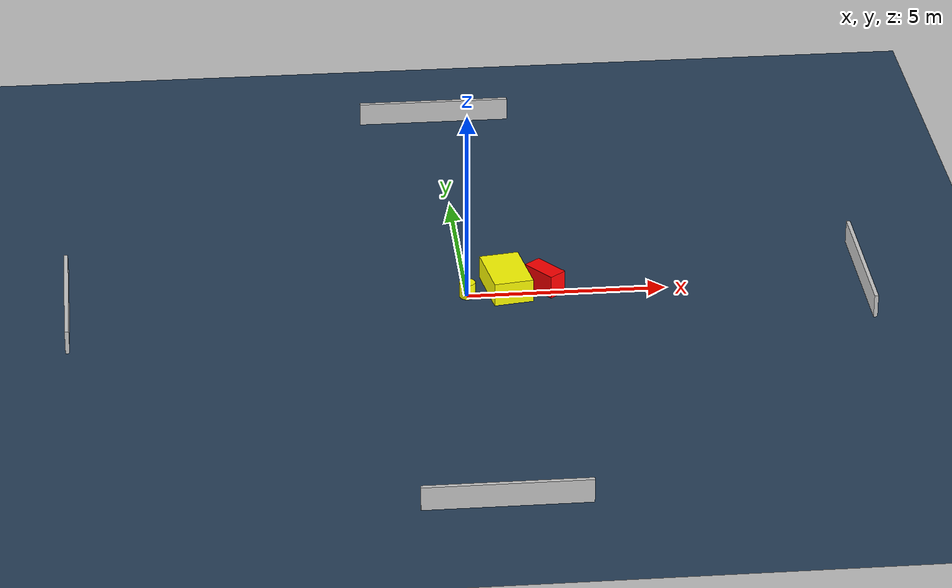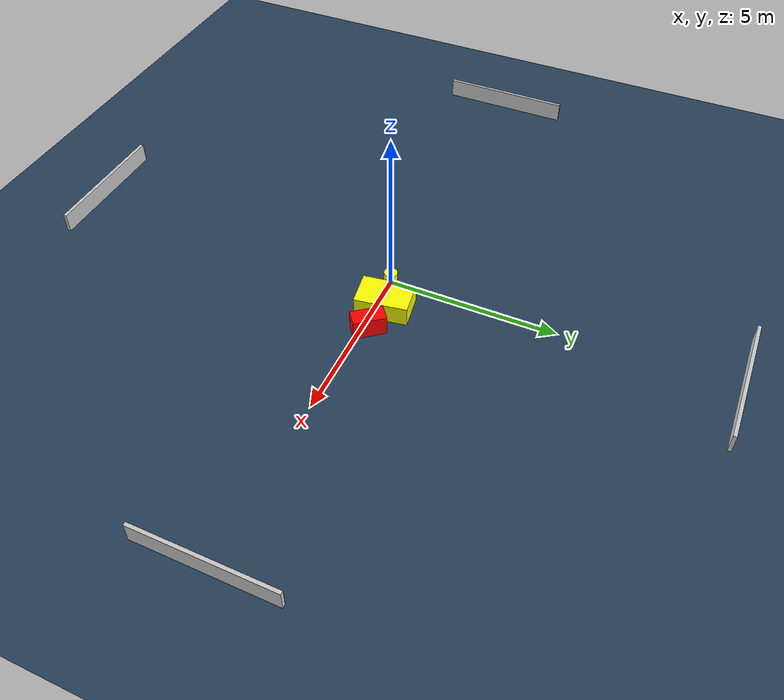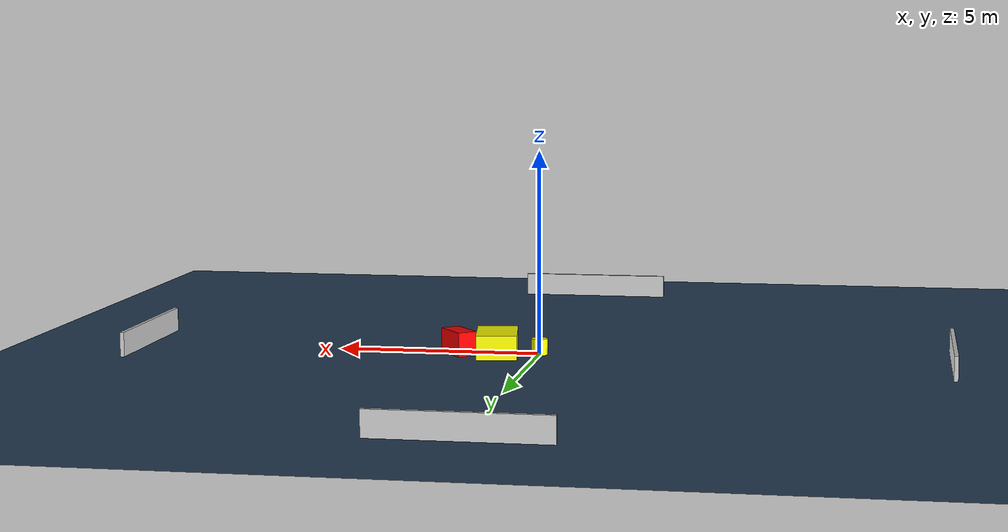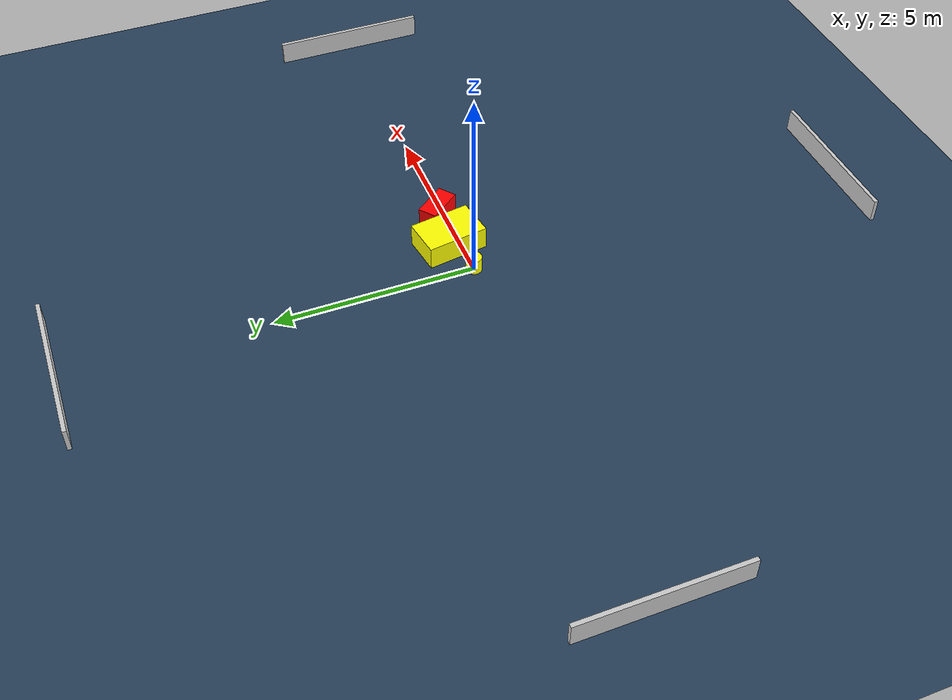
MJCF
<?xml version="1.0" ?>
<mujoco model="generated_environment">
  <option timestep="0.01" integrator="RK4" cone="elliptic"/>
  <default>
    <geom density="1"/>
  </default>
  <asset>
    <texture builtin="gradient" height="3072" name="skybox" rgb1="0.3 0.5 0.7" rgb2="0 0 0" type="skybox" width="512"/>
    <texture builtin="checker" height="300" name="groundplane" rgb1="0.2 0.3 0.4" rgb2="0.1 0.2 0.3" type="2d" width="300"/>
    <material name="groundplane" reflectance="0.2" texrepeat="5 5" texture="groundplane"/>
  </asset>
  <worldbody>
    <light dir="0 0 -1" directional="true" pos="0 0 1.5"/>
    <geom condim="3" friction="0.5 0.005 0.001" material="groundplane" name="floor" pos="0 0 0" size="0 0 0.05" type="plane"/>
    <body name="walls">
      <geom name="wall_1" condim="4" pos="-10.0 0.0 0.3" rgba="0.800000011920929 0.800000011920929 0.800000011920929 1.0" size="0.05 2.0 0.3" type="box"/>
      <geom name="wall_2" condim="4" pos="10.0 0.0 0.3" rgba="0.800000011920929 0.800000011920929 0.800000011920929 1.0" size="0.05 2.0 0.3" type="box"/>
      <geom name="wall_3" condim="4" pos="0.0 -10.0 0.3" rgba="0.800000011920929 0.800000011920929 0.800000011920929 1.0" size="2.0 0.05 0.3" type="box"/>
      <geom name="wall_4" condim="4" pos="0.0 10.0 0.3" rgba="0.800000011920929 0.800000011920929 0.800000011920929 1.0" size="2.0 0.05 0.3" type="box"/>
    </body>
    <body name="robot">
      <joint name="joint_x" type="slide" pos="0 0 0" axis="1 0 0"/>
      <joint name="joint_y" type="slide" pos="0 0 0" axis="0 1 0"/>
      <geom name="robot" type="cylinder" pos="0.0 0.0 0.2" size="0.2 0.2 0.0" mass="5.0" friction="1.0 0.005 0.0001" condim="4" rgba="1.0 1.0 0.0 1.0"/>
    </body>
    <body name="obstacle_1_movable">
      <geom name="obstacle_1_movable" condim="4" pos="1.0067438360793008 0.2706773638042455 0.3" euler="0 0 98.84340544228712" friction="0.0 0.005 0.001" rgba="1.0 1.0 0.0 1.0" size="0.770224221864301 0.5002275405973953 0.3" type="box" mass="0.1"/>
      <joint type="free"/>
    </body>
    <body name="obstacle_2_static">
      <geom name="obstacle_2_static" condim="4" pos="1.9780805646265245 0.2082558436827775 0.3" euler="0 0 127.92243373675535" friction="0.0 0.005 0.001" rgba="1.0 0.0 0.0 1.0" size="0.4718945020038855 0.24062057088774208 0.3" type="box"/>
    </body>
  </worldbody>
  <actuator>
    <motor name="actuator_x" joint="joint_x" gear="1" ctrlrange="-1 1"/>
    <motor name="actuator_y" joint="joint_y" gear="1" ctrlrange="-1 1"/>
  </actuator>
</mujoco>
